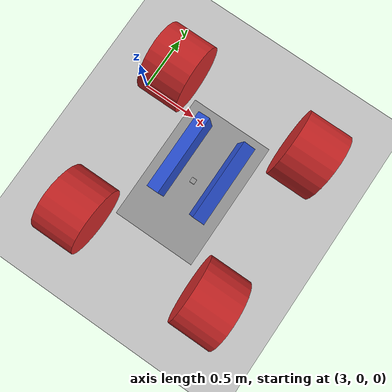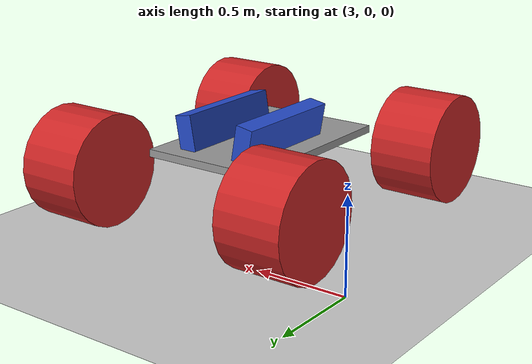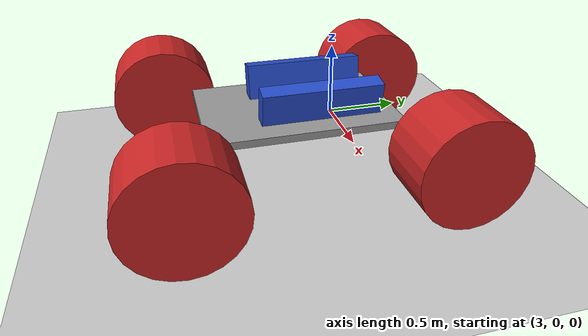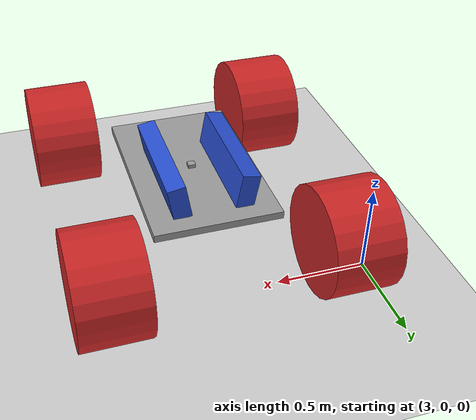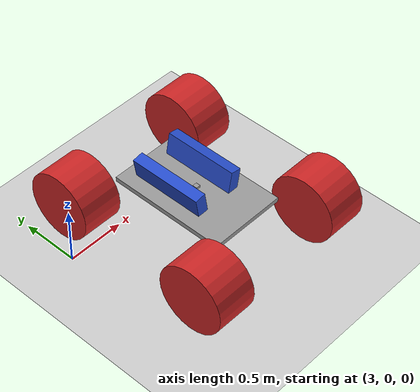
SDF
<?xml version="1.0" ?>
<sdf version='1.7'>
  <world name='default'>
    <include>
      <uri>model://ground_plane</uri>
    </include>

    <model name='ackermann_vehicle_model'>
      <link name='base_link'>
        <inertial>
          <pose>-0.05906 -0 0.043178 0 -0 0</pose>
          <mass>6.81</mass>
          <inertia>
            <ixx>0.268244</ixx>
            <ixy>3.2785e-18</ixy>
            <ixz>0.017614</ixz>
            <iyy>0.433928</iyy>
            <iyz>-2.39685e-18</iyz>
            <izz>0.638562</izz>
          </inertia>
        </inertial>
        <collision name='base_link_fixed_joint_lump__chassis_collision'>
          <pose>0 0 -0.02 0 -0 0</pose>
          <geometry>
            <box>
              <size>1.032 0.672 0.04</size>
            </box>
          </geometry>
          <surface>
            <contact>
              <ode/>
            </contact>
            <friction>
              <ode/>
              <torsional>
                <ode/>
              </torsional>
            </friction>
            <bounce/>
          </surface>
          <max_contacts>10</max_contacts>
        </collision>
        <collision name='base_link_fixed_joint_lump__left_battery_collision_1'>
          <pose>-0.1 0.177837 0.087015 1.39626 -0 0</pose>
          <geometry>
            <box>
              <size>0.64 0.188 0.096</size>
            </box>
          </geometry>
          <surface>
            <contact>
              <ode/>
            </contact>
            <friction>
              <ode/>
              <torsional>
                <ode/>
              </torsional>
            </friction>
            <bounce/>
          </surface>
          <max_contacts>10</max_contacts>
        </collision>
        <collision name='base_link_fixed_joint_lump__right_battery_collision_2'>
          <pose>-0.1 -0.177837 0.087015 -1.39626 0 0</pose>
          <geometry>
            <box>
              <size>0.64 0.188 0.096</size>
            </box>
          </geometry>
          <surface>
            <contact>
              <ode/>
            </contact>
            <friction>
              <ode/>
              <torsional>
                <ode/>
              </torsional>
            </friction>
            <bounce/>
          </surface>
          <max_contacts>10</max_contacts>
        </collision>
        <visual name='base_link_visual'>
          <pose>0 0 0 0 -0 0</pose>
          <geometry>
            <box>
              <size>0.04 0.04 0.04</size>
            </box>
          </geometry>
          <material>
            <script>
              <name>Gazebo/Grey</name>
              <uri>file://media/materials/scripts/gazebo.material</uri>
            </script>
          </material>
        </visual>
        <visual name='base_link_fixed_joint_lump__chassis_visual_1'>
          <pose>0 0 -0.02 0 -0 0</pose>
          <geometry>
            <box>
              <size>1.032 0.672 0.04</size>
            </box>
          </geometry>
          <material>
            <script>
              <name>Gazebo/Grey</name>
              <uri>file://media/materials/scripts/gazebo.material</uri>
            </script>
          </material>
        </visual>
        <visual name='base_link_fixed_joint_lump__left_battery_visual_2'>
          <pose>-0.1 0.177837 0.087015 1.39626 -0 0</pose>
          <geometry>
            <box>
              <size>0.64 0.188 0.096</size>
            </box>
          </geometry>
          <material>
            <script>
              <name>Gazebo/Blue</name>
              <uri>file://media/materials/scripts/gazebo.material</uri>
            </script>
          </material>
        </visual>
        <visual name='base_link_fixed_joint_lump__right_battery_visual_3'>
          <pose>-0.1 -0.177837 0.087015 -1.39626 0 0</pose>
          <geometry>
            <box>
              <size>0.64 0.188 0.096</size>
            </box>
          </geometry>
          <material>
            <script>
              <name>Gazebo/Blue</name>
              <uri>file://media/materials/scripts/gazebo.material</uri>
            </script>
          </material>
        </visual>
        <self_collide>0</self_collide>
        <enable_wind>0</enable_wind>
        <kinematic>0</kinematic>
      </link>
      <joint name='left_front_shock' type='prismatic'>
        <pose relative_to='base_link'>0.67 0.61 -0.094 0 -0 0</pose>
        <parent>base_link</parent>
        <child>left_steering_link</child>
        <axis>
          <xyz>0 0 -1</xyz>
          <limit>
            <lower>-0.168</lower>
            <upper>0.168</upper>
            <effort>50.0424</effort>
            <velocity>4000</velocity>
          </limit>
          <dynamics>
            <spring_reference>0</spring_reference>
            <spring_stiffness>0</spring_stiffness>
          </dynamics>
        </axis>
      </joint>
      <link name='left_steering_link'>
        <pose relative_to='left_front_shock'>0 0 0 0 -0 0</pose>
        <inertial>
          <pose>0 0 0 0 -0 0</pose>
          <mass>0.001</mass>
          <inertia>
            <ixx>0.001</ixx>
            <ixy>0</ixy>
            <ixz>0</ixz>
            <iyy>0.001</iyy>
            <iyz>0</iyz>
            <izz>0.001</izz>
          </inertia>
        </inertial>
        <self_collide>0</self_collide>
        <enable_wind>0</enable_wind>
        <kinematic>0</kinematic>
      </link>
      <joint name='left_steering_joint' type='revolute'>
        <pose relative_to='left_steering_link'>0 0 0 0 -0 0</pose>
        <parent>left_steering_link</parent>
        <child>left_front_axle_carrier</child>
        <axis>
          <xyz>0 0 1</xyz>
          <limit>
            <lower>-0.785398</lower>
            <upper>0.785398</upper>
            <effort>0.5649</effort>
            <velocity>4.553</velocity>
          </limit>
          <dynamics>
            <spring_reference>0</spring_reference>
            <spring_stiffness>0</spring_stiffness>
          </dynamics>
        </axis>
      </joint>
      <link name='left_front_axle_carrier'>
        <pose relative_to='left_steering_joint'>0 0 0 0 -0 0</pose>
        <inertial>
          <pose>0 0 0 0 -0 0</pose>
          <mass>0.001</mass>
          <inertia>
            <ixx>0.001</ixx>
            <ixy>0</ixy>
            <ixz>0</ixz>
            <iyy>0.001</iyy>
            <iyz>0</iyz>
            <izz>0.001</izz>
          </inertia>
        </inertial>
        <self_collide>0</self_collide>
        <enable_wind>0</enable_wind>
        <kinematic>0</kinematic>
      </link>
      <joint name='left_front_axle' type='revolute'>
        <pose relative_to='left_front_axle_carrier'>0 0 0 1.5708 -0 0</pose>
        <parent>left_front_axle_carrier</parent>
        <child>left_front_wheel</child>
        <axis>
          <xyz>0 0 -1</xyz>
          <limit>
            <effort>20.5106</effort>
            <velocity>979.478</velocity>
            <lower>-1e+16</lower>
            <upper>1e+16</upper>
          </limit>
          <dynamics>
            <spring_reference>0</spring_reference>
            <spring_stiffness>0</spring_stiffness>
          </dynamics>
        </axis>
      </joint>
      <link name='left_front_wheel'>
        <pose relative_to='left_front_axle'>0 0 0 0 -0 0</pose>
        <inertial>
          <pose>0 0 0 0 -0 0</pose>
          <mass>1.16</mass>
          <inertia>
            <ixx>0.0477738</ixx>
            <ixy>0</ixy>
            <ixz>0</ixz>
            <iyy>0.0477738</iyy>
            <iyz>0</iyz>
            <izz>0.0711004</izz>
          </inertia>
        </inertial>
        <collision name='left_front_wheel_collision'>
          <pose>0 -0 0 0 -0 0</pose>
          <geometry>
            <cylinder>
              <length>0.3556</length>
              <radius>0.2921</radius>
            </cylinder>
          </geometry>
          <surface>
            <contact>
              <ode/>
            </contact>
            <friction>
              <ode/>
              <torsional>
                <ode/>
              </torsional>
            </friction>
            <bounce/>
          </surface>
          <max_contacts>10</max_contacts>
        </collision>
        <visual name='left_front_wheel_visual'>
          <pose>0 -0 0 0 -0 0</pose>
          <geometry>
            <cylinder>
              <length>0.3556</length>
              <radius>0.2921</radius>
            </cylinder>
          </geometry>
          <material>
            <script>
              <name>Gazebo/Red</name>
              <uri>file://media/materials/scripts/gazebo.material</uri>
            </script>
          </material>
        </visual>
        <self_collide>0</self_collide>
        <enable_wind>0</enable_wind>
        <kinematic>0</kinematic>
      </link>
      <joint name='left_rear_shock' type='prismatic'>
        <pose relative_to='base_link'>-0.67 0.61 -0.094 0 -0 0</pose>
        <parent>base_link</parent>
        <child>left_rear_axle_carrier</child>
        <axis>
          <xyz>0 0 -1</xyz>
          <limit>
            <lower>-0.168</lower>
            <upper>0.168</upper>
            <effort>50.0424</effort>
            <velocity>4000</velocity>
          </limit>
          <dynamics>
            <spring_reference>0</spring_reference>
            <spring_stiffness>0</spring_stiffness>
          </dynamics>
        </axis>
      </joint>
      <link name='left_rear_axle_carrier'>
        <pose relative_to='left_rear_shock'>0 0 0 0 -0 0</pose>
        <inertial>
          <pose>0 0 0 0 -0 0</pose>
          <mass>0.001</mass>
          <inertia>
            <ixx>0.001</ixx>
            <ixy>0</ixy>
            <ixz>0</ixz>
            <iyy>0.001</iyy>
            <iyz>0</iyz>
            <izz>0.001</izz>
          </inertia>
        </inertial>
        <self_collide>0</self_collide>
        <enable_wind>0</enable_wind>
        <kinematic>0</kinematic>
      </link>
      <joint name='left_rear_axle' type='revolute'>
        <pose relative_to='left_rear_axle_carrier'>0 0 0 1.5708 -0 0</pose>
        <parent>left_rear_axle_carrier</parent>
        <child>left_rear_wheel</child>
        <axis>
          <xyz>0 0 -1</xyz>
          <limit>
            <effort>20.5106</effort>
            <velocity>979.478</velocity>
            <lower>-1e+16</lower>
            <upper>1e+16</upper>
          </limit>
          <dynamics>
            <spring_reference>0</spring_reference>
            <spring_stiffness>0</spring_stiffness>
          </dynamics>
        </axis>
      </joint>
      <link name='left_rear_wheel'>
        <pose relative_to='left_rear_axle'>0 0 0 0 -0 0</pose>
        <inertial>
          <pose>0 0 0 0 -0 0</pose>
          <mass>1.16</mass>
          <inertia>
            <ixx>0.0477738</ixx>
            <ixy>0</ixy>
            <ixz>0</ixz>
            <iyy>0.0477738</iyy>
            <iyz>0</iyz>
            <izz>0.0711004</izz>
          </inertia>
        </inertial>
        <collision name='left_rear_wheel_collision'>
          <pose>0 -0 0 0 -0 0</pose>
          <geometry>
            <cylinder>
              <length>0.3556</length>
              <radius>0.2921</radius>
            </cylinder>
          </geometry>
          <surface>
            <contact>
              <ode/>
            </contact>
            <friction>
              <ode/>
              <torsional>
                <ode/>
              </torsional>
            </friction>
            <bounce/>
          </surface>
          <max_contacts>10</max_contacts>
        </collision>
        <visual name='left_rear_wheel_visual'>
          <pose>0 -0 0 0 -0 0</pose>
          <geometry>
            <cylinder>
              <length>0.3556</length>
              <radius>0.2921</radius>
            </cylinder>
          </geometry>
          <material>
            <script>
              <name>Gazebo/Red</name>
              <uri>file://media/materials/scripts/gazebo.material</uri>
            </script>
          </material>
        </visual>
        <self_collide>0</self_collide>
        <enable_wind>0</enable_wind>
        <kinematic>0</kinematic>
      </link>
      <joint name='right_front_shock' type='prismatic'>
        <pose relative_to='base_link'>0.67 -0.61 -0.094 0 -0 0</pose>
        <parent>base_link</parent>
        <child>right_steering_link</child>
        <axis>
          <xyz>0 0 -1</xyz>
          <limit>
            <lower>-0.168</lower>
            <upper>0.168</upper>
            <effort>50.0424</effort>
            <velocity>4000</velocity>
          </limit>
          <dynamics>
            <spring_reference>0</spring_reference>
            <spring_stiffness>0</spring_stiffness>
          </dynamics>
        </axis>
      </joint>
      <link name='right_steering_link'>
        <pose relative_to='right_front_shock'>0 0 0 0 -0 0</pose>
        <inertial>
          <pose>0 0 0 0 -0 0</pose>
          <mass>0.001</mass>
          <inertia>
            <ixx>0.001</ixx>
            <ixy>0</ixy>
            <ixz>0</ixz>
            <iyy>0.001</iyy>
            <iyz>0</iyz>
            <izz>0.001</izz>
          </inertia>
        </inertial>
        <self_collide>0</self_collide>
        <enable_wind>0</enable_wind>
        <kinematic>0</kinematic>
      </link>
      <joint name='right_steering_joint' type='revolute'>
        <pose relative_to='right_steering_link'>0 0 0 0 -0 0</pose>
        <parent>right_steering_link</parent>
        <child>right_front_axle_carrier</child>
        <axis>
          <xyz>0 0 1</xyz>
          <limit>
            <lower>-0.785398</lower>
            <upper>0.785398</upper>
            <effort>0.5649</effort>
            <velocity>4.553</velocity>
          </limit>
          <dynamics>
            <spring_reference>0</spring_reference>
            <spring_stiffness>0</spring_stiffness>
          </dynamics>
        </axis>
      </joint>
      <link name='right_front_axle_carrier'>
        <pose relative_to='right_steering_joint'>0 0 0 0 -0 0</pose>
        <inertial>
          <pose>0 0 0 0 -0 0</pose>
          <mass>0.001</mass>
          <inertia>
            <ixx>0.001</ixx>
            <ixy>0</ixy>
            <ixz>0</ixz>
            <iyy>0.001</iyy>
            <iyz>0</iyz>
            <izz>0.001</izz>
          </inertia>
        </inertial>
        <self_collide>0</self_collide>
        <enable_wind>0</enable_wind>
        <kinematic>0</kinematic>
      </link>
      <joint name='right_front_axle' type='revolute'>
        <pose relative_to='right_front_axle_carrier'>0 0 0 1.5708 -0 0</pose>
        <parent>right_front_axle_carrier</parent>
        <child>right_front_wheel</child>
        <axis>
          <xyz>0 0 -1</xyz>
          <limit>
            <effort>20.5106</effort>
            <velocity>979.478</velocity>
            <lower>-1e+16</lower>
            <upper>1e+16</upper>
          </limit>
          <dynamics>
            <spring_reference>0</spring_reference>
            <spring_stiffness>0</spring_stiffness>
          </dynamics>
        </axis>
      </joint>
      <link name='right_front_wheel'>
        <pose relative_to='right_front_axle'>0 0 0 0 -0 0</pose>
        <inertial>
          <pose>0 0 0 0 -0 0</pose>
          <mass>1.16</mass>
          <inertia>
            <ixx>0.0477738</ixx>
            <ixy>0</ixy>
            <ixz>0</ixz>
            <iyy>0.0477738</iyy>
            <iyz>0</iyz>
            <izz>0.0711004</izz>
          </inertia>
        </inertial>
        <collision name='right_front_wheel_collision'>
          <pose>0 0 0 0 -0 0</pose>
          <geometry>
            <cylinder>
              <length>0.3556</length>
              <radius>0.2921</radius>
            </cylinder>
          </geometry>
          <surface>
            <contact>
              <ode/>
            </contact>
            <friction>
              <ode/>
              <torsional>
                <ode/>
              </torsional>
            </friction>
            <bounce/>
          </surface>
          <max_contacts>10</max_contacts>
        </collision>
        <visual name='right_front_wheel_visual'>
          <pose>0 0 0 0 -0 0</pose>
          <geometry>
            <cylinder>
              <length>0.3556</length>
              <radius>0.2921</radius>
            </cylinder>
          </geometry>
          <material>
            <script>
              <name>Gazebo/Red</name>
              <uri>file://media/materials/scripts/gazebo.material</uri>
            </script>
          </material>
        </visual>
        <self_collide>0</self_collide>
        <enable_wind>0</enable_wind>
        <kinematic>0</kinematic>
      </link>
      <joint name='right_rear_shock' type='prismatic'>
        <pose relative_to='base_link'>-0.67 -0.61 -0.094 0 -0 0</pose>
        <parent>base_link</parent>
        <child>right_rear_axle_carrier</child>
        <axis>
          <xyz>0 0 -1</xyz>
          <limit>
            <lower>-0.168</lower>
            <upper>0.168</upper>
            <effort>50.0424</effort>
            <velocity>4000</velocity>
          </limit>
          <dynamics>
            <spring_reference>0</spring_reference>
            <spring_stiffness>0</spring_stiffness>
          </dynamics>
        </axis>
      </joint>
      <link name='right_rear_axle_carrier'>
        <pose relative_to='right_rear_shock'>0 0 0 0 -0 0</pose>
        <inertial>
          <pose>0 0 0 0 -0 0</pose>
          <mass>0.001</mass>
          <inertia>
            <ixx>0.001</ixx>
            <ixy>0</ixy>
            <ixz>0</ixz>
            <iyy>0.001</iyy>
            <iyz>0</iyz>
            <izz>0.001</izz>
          </inertia>
        </inertial>
        <self_collide>0</self_collide>
        <enable_wind>0</enable_wind>
        <kinematic>0</kinematic>
      </link>
      <joint name='right_rear_axle' type='revolute'>
        <pose relative_to='right_rear_axle_carrier'>0 0 0 1.5708 -0 0</pose>
        <parent>right_rear_axle_carrier</parent>
        <child>right_rear_wheel</child>
        <axis>
          <xyz>0 0 -1</xyz>
          <limit>
            <effort>20.5106</effort>
            <velocity>979.478</velocity>
            <lower>-1e+16</lower>
            <upper>1e+16</upper>
          </limit>
          <dynamics>
            <spring_reference>0</spring_reference>
            <spring_stiffness>0</spring_stiffness>
          </dynamics>
        </axis>
      </joint>
      <link name='right_rear_wheel'>
        <pose relative_to='right_rear_axle'>0 0 0 0 -0 0</pose>
        <inertial>
          <pose>0 0 0 0 -0 0</pose>
          <mass>1.16</mass>
          <inertia>
            <ixx>0.0477738</ixx>
            <ixy>0</ixy>
            <ixz>0</ixz>
            <iyy>0.0477738</iyy>
            <iyz>0</iyz>
            <izz>0.0711004</izz>
          </inertia>
        </inertial>
        <collision name='right_rear_wheel_collision'>
          <pose>0 0 0 0 -0 0</pose>
          <geometry>
            <cylinder>
              <length>0.3556</length>
              <radius>0.2921</radius>
            </cylinder>
          </geometry>
          <surface>
            <contact>
              <ode/>
            </contact>
            <friction>
              <ode/>
              <torsional>
                <ode/>
              </torsional>
            </friction>
            <bounce/>
          </surface>
          <max_contacts>10</max_contacts>
        </collision>
        <visual name='right_rear_wheel_visual'>
          <pose>0 0 0 0 -0 0</pose>
          <geometry>
            <cylinder>
              <length>0.3556</length>
              <radius>0.2921</radius>
            </cylinder>
          </geometry>
          <material>
            <script>
              <name>Gazebo/Red</name>
              <uri>file://media/materials/scripts/gazebo.material</uri>
            </script>
          </material>
        </visual>
        <self_collide>0</self_collide>
        <enable_wind>0</enable_wind>
        <kinematic>0</kinematic>
      </link>
      <static>0</static>
      <plugin name='gazebo_ros_control' filename='libgazebo_ros_control.so'>
        <robotNamespace>/</robotNamespace>
      </plugin>
      <pose>3.84 -0.5 0.5 0 0 -1.57</pose>
    </model>
  </world>
</sdf>
